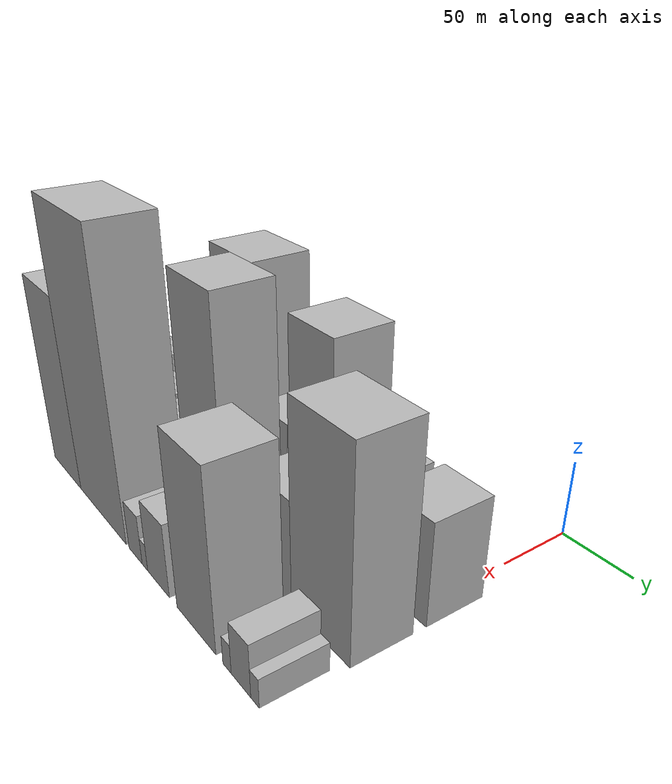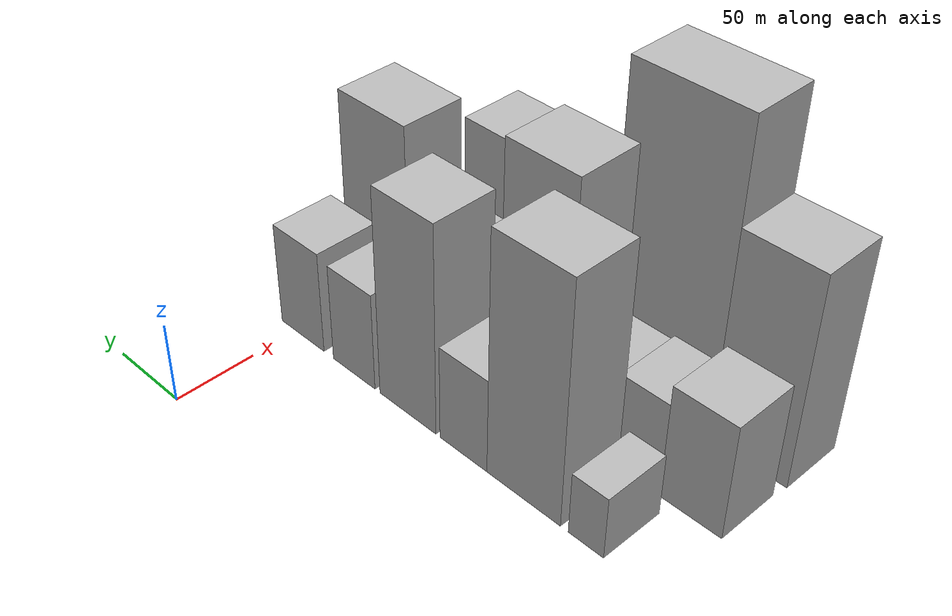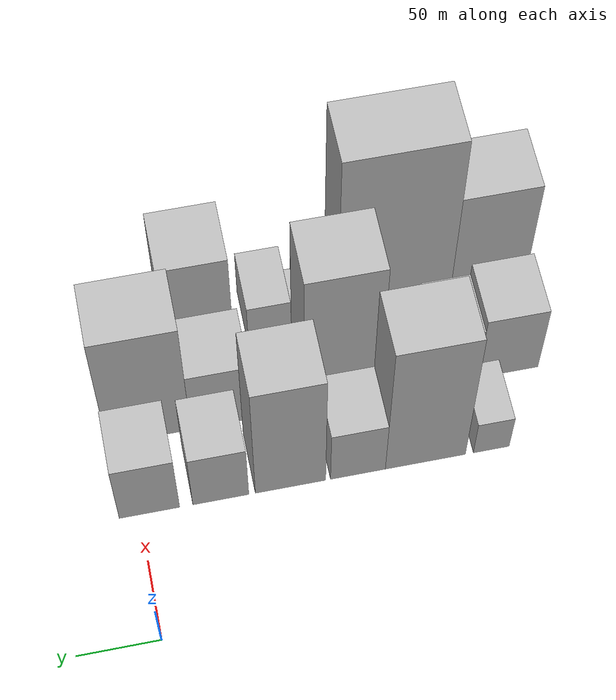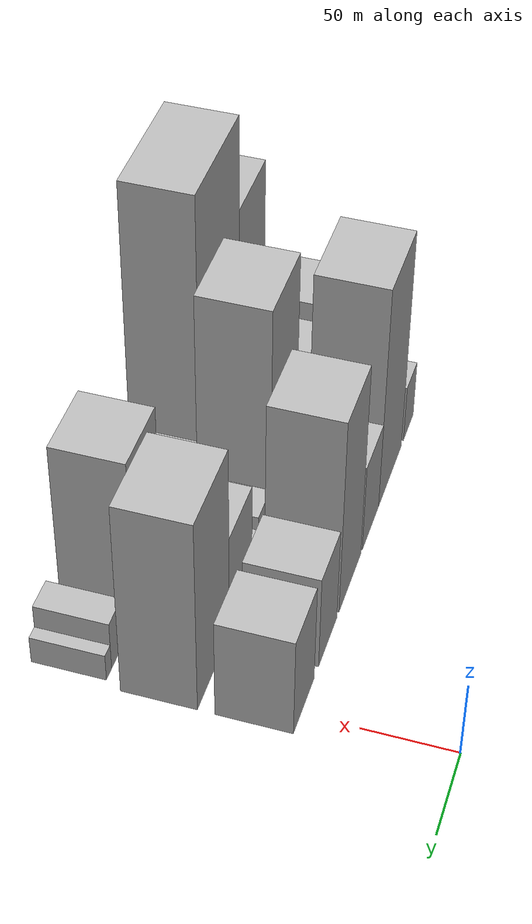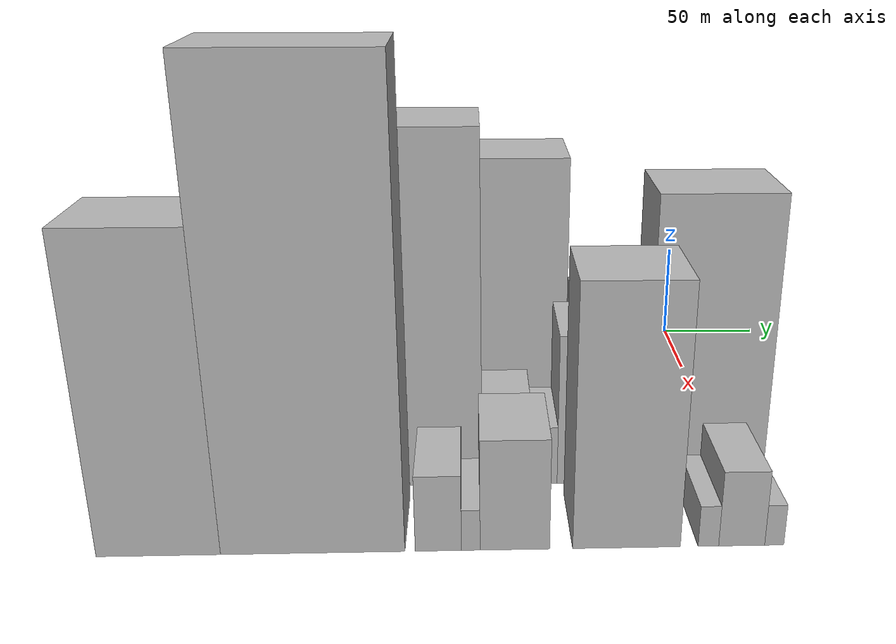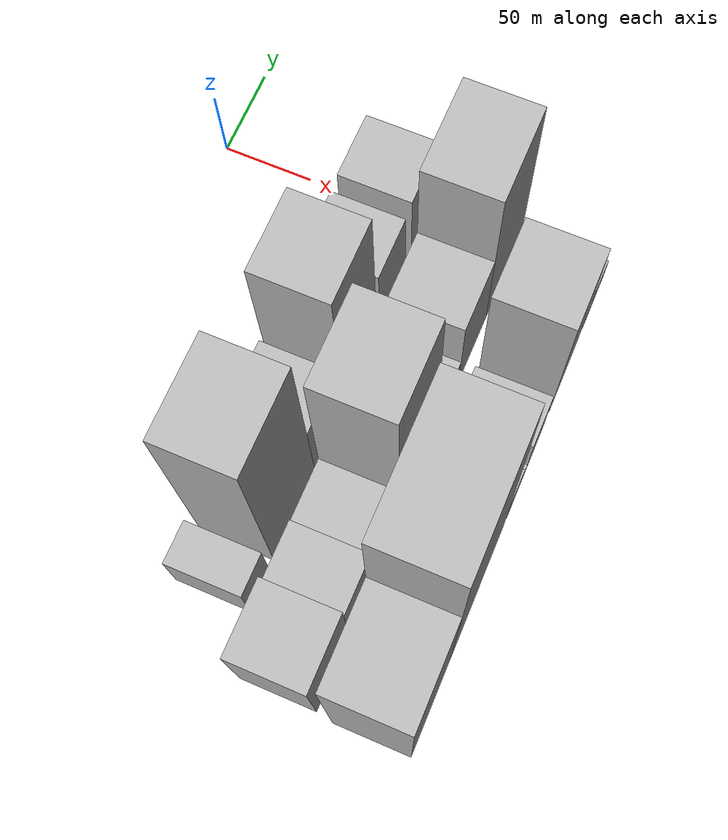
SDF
<sdf version="1.6">
 <world name="default">
  <model name="building_10">
   <static>1</static>
   <pose>100.0000 -215.5935 0 0.000000 0.000000 0.000000</pose>
   <link name="link">
    <pose>0 0 19.50 0 0 0</pose>
    <collision name="collision"><geometry><box><size>40.0000 22.2987 39.0000</size></box></geometry></collision>
    <visual name="visual">
     <cast_shadows>0</cast_shadows>
     <geometry><box><size>40.0000 22.2987 39.0000</size></box></geometry>
     <material>
      <script>
       <uri>model://HANNAS_wall/materials/scripts</uri>
       <uri>model://HANNAS_wall/materials/textures</uri>
       <name>vrc/HANNAS_wall</name>
      </script>
     </material>
    </visual>
   </link>
  </model>
  <model name="building_11">
   <static>1</static>
   <pose>100.0000 -174.6152 0 0.000000 0.000000 0.000000</pose>
   <link name="link">
    <pose>0 0 75.00 0 0 0</pose>
    <collision name="collision"><geometry><box><size>40.0000 49.6580 150.0000</size></box></geometry></collision>
    <visual name="visual">
     <cast_shadows>0</cast_shadows>
     <geometry><box><size>40.0000 49.6580 150.0000</size></box></geometry>
     <material>
      <script>
       <uri>model://HANNAS_wall/materials/scripts</uri>
       <uri>model://HANNAS_wall/materials/textures</uri>
       <name>vrc/HANNAS_wall</name>
      </script>
     </material>
    </visual>
   </link>
  </model>
  <model name="building_12">
   <static>1</static>
   <pose>100.0000 -132.8719 0 0.000000 0.000000 0.000000</pose>
   <link name="link">
    <pose>0 0 30.00 0 0 0</pose>
    <collision name="collision"><geometry><box><size>40.0000 33.8285 60.0000</size></box></geometry></collision>
    <visual name="visual">
     <cast_shadows>0</cast_shadows>
     <geometry><box><size>40.0000 33.8285 60.0000</size></box></geometry>
     <material>
      <script>
       <uri>model://HANNAS_wall/materials/scripts</uri>
       <uri>model://HANNAS_wall/materials/textures</uri>
       <name>vrc/HANNAS_wall</name>
      </script>
     </material>
    </visual>
   </link>
  </model>
  <model name="building_13">
   <static>1</static>
   <pose>100.0000 -91.4328 0 0.000000 0.000000 0.000000</pose>
   <link name="link">
    <pose>0 0 66.00 0 0 0</pose>
    <collision name="collision"><geometry><box><size>40.0000 43.0498 132.0000</size></box></geometry></collision>
    <visual name="visual">
     <cast_shadows>0</cast_shadows>
     <geometry><box><size>40.0000 43.0498 132.0000</size></box></geometry>
     <material>
      <script>
       <uri>model://HANNAS_wall/materials/scripts</uri>
       <uri>model://HANNAS_wall/materials/textures</uri>
       <name>vrc/HANNAS_wall</name>
      </script>
     </material>
    </visual>
   </link>
  </model>
  <model name="building_14">
   <static>1</static>
   <pose>100.0000 -48.8827 0 0.000000 0.000000 0.000000</pose>
   <link name="link">
    <pose>0 0 31.50 0 0 0</pose>
    <collision name="collision"><geometry><box><size>40.0000 34.0503 63.0000</size></box></geometry></collision>
    <visual name="visual">
     <cast_shadows>0</cast_shadows>
     <geometry><box><size>40.0000 34.0503 63.0000</size></box></geometry>
     <material>
      <script>
       <uri>model://HANNAS_wall/materials/scripts</uri>
       <uri>model://HANNAS_wall/materials/textures</uri>
       <name>vrc/HANNAS_wall</name>
      </script>
     </material>
    </visual>
   </link>
  </model>
  <model name="building_15">
   <static>1</static>
   <pose>100.0000 -5.6149 0 0.000000 0.000000 0.000000</pose>
   <link name="link">
    <pose>0 0 33.00 0 0 0</pose>
    <collision name="collision"><geometry><box><size>40.0000 36.4854 66.0000</size></box></geometry></collision>
    <visual name="visual">
     <cast_shadows>0</cast_shadows>
     <geometry><box><size>40.0000 36.4854 66.0000</size></box></geometry>
     <material>
      <script>
       <uri>model://HANNAS_wall/materials/scripts</uri>
       <uri>model://HANNAS_wall/materials/textures</uri>
       <name>vrc/HANNAS_wall</name>
      </script>
     </material>
    </visual>
   </link>
  </model>
  <model name="building_37">
   <static>1</static>
   <pose>149.0000 -238.4165 0 0.000000 0.000000 0.000000</pose>
   <link name="link">
    <pose>0 0 36.00 0 0 0</pose>
    <collision name="collision"><geometry><box><size>40.0000 38.0072 72.0000</size></box></geometry></collision>
    <visual name="visual">
     <cast_shadows>0</cast_shadows>
     <geometry><box><size>40.0000 38.0072 72.0000</size></box></geometry>
     <material>
      <script>
       <uri>model://HANNAS_wall/materials/scripts</uri>
       <uri>model://HANNAS_wall/materials/textures</uri>
       <name>vrc/HANNAS_wall</name>
      </script>
     </material>
    </visual>
   </link>
  </model>
  <model name="building_38">
   <static>1</static>
   <pose>149.0000 -204.2550 0 0.000000 0.000000 0.000000</pose>
   <link name="link">
    <pose>0 0 30.00 0 0 0</pose>
    <collision name="collision"><geometry><box><size>40.0000 30.3158 60.0000</size></box></geometry></collision>
    <visual name="visual">
     <cast_shadows>0</cast_shadows>
     <geometry><box><size>40.0000 30.3158 60.0000</size></box></geometry>
     <material>
      <script>
       <uri>model://HANNAS_wall/materials/scripts</uri>
       <uri>model://HANNAS_wall/materials/textures</uri>
       <name>vrc/HANNAS_wall</name>
      </script>
     </material>
    </visual>
   </link>
  </model>
  <model name="building_39">
   <static>1</static>
   <pose>149.0000 -173.2007 0 0.000000 0.000000 0.000000</pose>
   <link name="link">
    <pose>0 0 28.50 0 0 0</pose>
    <collision name="collision"><geometry><box><size>40.0000 31.7929 57.0000</size></box></geometry></collision>
    <visual name="visual">
     <cast_shadows>0</cast_shadows>
     <geometry><box><size>40.0000 31.7929 57.0000</size></box></geometry>
     <material>
      <script>
       <uri>model://HANNAS_wall/materials/scripts</uri>
       <uri>model://HANNAS_wall/materials/textures</uri>
       <name>vrc/HANNAS_wall</name>
      </script>
     </material>
    </visual>
   </link>
  </model>
  <model name="building_40">
   <static>1</static>
   <pose>149.0000 -133.5145 0 0.000000 0.000000 0.000000</pose>
   <link name="link">
    <pose>0 0 78.00 0 0 0</pose>
    <collision name="collision"><geometry><box><size>40.0000 47.5794 156.0000</size></box></geometry></collision>
    <visual name="visual">
     <cast_shadows>0</cast_shadows>
     <geometry><box><size>40.0000 47.5794 156.0000</size></box></geometry>
     <material>
      <script>
       <uri>model://HANNAS_wall/materials/scripts</uri>
       <uri>model://HANNAS_wall/materials/textures</uri>
       <name>vrc/HANNAS_wall</name>
      </script>
     </material>
    </visual>
   </link>
  </model>
  <model name="building_41">
   <static>1</static>
   <pose>149.0000 -99.1163 0 0.000000 0.000000 0.000000</pose>
   <link name="link">
    <pose>0 0 18.00 0 0 0</pose>
    <collision name="collision"><geometry><box><size>40.0000 21.2170 36.0000</size></box></geometry></collision>
    <visual name="visual">
     <cast_shadows>0</cast_shadows>
     <geometry><box><size>40.0000 21.2170 36.0000</size></box></geometry>
     <material>
      <script>
       <uri>model://HANNAS_wall/materials/scripts</uri>
       <uri>model://HANNAS_wall/materials/textures</uri>
       <name>vrc/HANNAS_wall</name>
      </script>
     </material>
    </visual>
   </link>
  </model>
  <model name="building_42">
   <static>1</static>
   <pose>149.0000 -82.8478 0 0.000000 0.000000 0.000000</pose>
   <link name="link">
    <pose>0 0 13.50 0 0 0</pose>
    <collision name="collision"><geometry><box><size>40.0000 11.3200 27.0000</size></box></geometry></collision>
    <visual name="visual">
     <cast_shadows>0</cast_shadows>
     <geometry><box><size>40.0000 11.3200 27.0000</size></box></geometry>
     <material>
      <script>
       <uri>model://HANNAS_wall/materials/scripts</uri>
       <uri>model://HANNAS_wall/materials/textures</uri>
       <name>vrc/HANNAS_wall</name>
      </script>
     </material>
    </visual>
   </link>
  </model>
  <model name="building_43">
   <static>1</static>
   <pose>149.0000 -58.1162 0 0.000000 0.000000 0.000000</pose>
   <link name="link">
    <pose>0 0 34.50 0 0 0</pose>
    <collision name="collision"><geometry><box><size>40.0000 38.1432 69.0000</size></box></geometry></collision>
    <visual name="visual">
     <cast_shadows>0</cast_shadows>
     <geometry><box><size>40.0000 38.1432 69.0000</size></box></geometry>
     <material>
      <script>
       <uri>model://HANNAS_wall/materials/scripts</uri>
       <uri>model://HANNAS_wall/materials/textures</uri>
       <name>vrc/HANNAS_wall</name>
      </script>
     </material>
    </visual>
   </link>
  </model>
  <model name="building_44">
   <static>1</static>
   <pose>149.0000 -13.2859 0 0.000000 0.000000 0.000000</pose>
   <link name="link">
    <pose>0 0 64.50 0 0 0</pose>
    <collision name="collision"><geometry><box><size>40.0000 51.5175 129.0000</size></box></geometry></collision>
    <visual name="visual">
     <cast_shadows>0</cast_shadows>
     <geometry><box><size>40.0000 51.5175 129.0000</size></box></geometry>
     <material>
      <script>
       <uri>model://HANNAS_wall/materials/scripts</uri>
       <uri>model://HANNAS_wall/materials/textures</uri>
       <name>vrc/HANNAS_wall</name>
      </script>
     </material>
    </visual>
   </link>
  </model>
  <model name="building_66">
   <static>1</static>
   <pose>198.0000 -235.3586 0 0.000000 0.000000 0.000000</pose>
   <link name="link">
    <pose>0 0 66.00 0 0 0</pose>
    <collision name="collision"><geometry><box><size>40.0000 47.6505 132.0000</size></box></geometry></collision>
    <visual name="visual">
     <cast_shadows>0</cast_shadows>
     <geometry><box><size>40.0000 47.6505 132.0000</size></box></geometry>
     <material>
      <script>
       <uri>model://HANNAS_wall/materials/scripts</uri>
       <uri>model://HANNAS_wall/materials/textures</uri>
       <name>vrc/HANNAS_wall</name>
      </script>
     </material>
    </visual>
   </link>
  </model>
  <model name="building_67">
   <static>1</static>
   <pose>198.0000 -175.9464 0 0.000000 0.000000 0.000000</pose>
   <link name="link">
    <pose>0 0 96.00 0 0 0</pose>
    <collision name="collision"><geometry><box><size>40.0000 71.1739 192.0000</size></box></geometry></collision>
    <visual name="visual">
     <cast_shadows>0</cast_shadows>
     <geometry><box><size>40.0000 71.1739 192.0000</size></box></geometry>
     <material>
      <script>
       <uri>model://HANNAS_wall/materials/scripts</uri>
       <uri>model://HANNAS_wall/materials/textures</uri>
       <name>vrc/HANNAS_wall</name>
      </script>
     </material>
    </visual>
   </link>
  </model>
  <model name="building_68">
   <static>1</static>
   <pose>198.0000 -127.3639 0 0.000000 0.000000 0.000000</pose>
   <link name="link">
    <pose>0 0 16.50 0 0 0</pose>
    <collision name="collision"><geometry><box><size>40.0000 17.9911 33.0000</size></box></geometry></collision>
    <visual name="visual">
     <cast_shadows>0</cast_shadows>
     <geometry><box><size>40.0000 17.9911 33.0000</size></box></geometry>
     <material>
      <script>
       <uri>model://HANNAS_wall/materials/scripts</uri>
       <uri>model://HANNAS_wall/materials/textures</uri>
       <name>vrc/HANNAS_wall</name>
      </script>
     </material>
    </visual>
   </link>
  </model>
  <model name="building_69">
   <static>1</static>
   <pose>198.0000 -114.7444 0 0.000000 0.000000 0.000000</pose>
   <link name="link">
    <pose>0 0 9.00 0 0 0</pose>
    <collision name="collision"><geometry><box><size>40.0000 7.2479 18.0000</size></box></geometry></collision>
    <visual name="visual">
     <cast_shadows>0</cast_shadows>
     <geometry><box><size>40.0000 7.2479 18.0000</size></box></geometry>
     <material>
      <script>
       <uri>model://HANNAS_wall/materials/scripts</uri>
       <uri>model://HANNAS_wall/materials/textures</uri>
       <name>vrc/HANNAS_wall</name>
      </script>
     </material>
    </visual>
   </link>
  </model>
  <model name="building_70">
   <static>1</static>
   <pose>198.0000 -97.5670 0 0.000000 0.000000 0.000000</pose>
   <link name="link">
    <pose>0 0 24.00 0 0 0</pose>
    <collision name="collision"><geometry><box><size>40.0000 27.1068 48.0000</size></box></geometry></collision>
    <visual name="visual">
     <cast_shadows>0</cast_shadows>
     <geometry><box><size>40.0000 27.1068 48.0000</size></box></geometry>
     <material>
      <script>
       <uri>model://HANNAS_wall/materials/scripts</uri>
       <uri>model://HANNAS_wall/materials/textures</uri>
       <name>vrc/HANNAS_wall</name>
      </script>
     </material>
    </visual>
   </link>
  </model>
  <model name="building_71">
   <static>1</static>
   <pose>198.0000 -53.8993 0 0.000000 0.000000 0.000000</pose>
   <link name="link">
    <pose>0 0 55.50 0 0 0</pose>
    <collision name="collision"><geometry><box><size>40.0000 42.2286 111.0000</size></box></geometry></collision>
    <visual name="visual">
     <cast_shadows>0</cast_shadows>
     <geometry><box><size>40.0000 42.2286 111.0000</size></box></geometry>
     <material>
      <script>
       <uri>model://HANNAS_wall/materials/scripts</uri>
       <uri>model://HANNAS_wall/materials/textures</uri>
       <name>vrc/HANNAS_wall</name>
      </script>
     </material>
    </visual>
   </link>
  </model>
  <model name="building_72">
   <static>1</static>
   <pose>198.0000 -21.7380 0 0.000000 0.000000 0.000000</pose>
   <link name="link">
    <pose>0 0 9.00 0 0 0</pose>
    <collision name="collision"><geometry><box><size>40.0000 8.0939 18.0000</size></box></geometry></collision>
    <visual name="visual">
     <cast_shadows>0</cast_shadows>
     <geometry><box><size>40.0000 8.0939 18.0000</size></box></geometry>
     <material>
      <script>
       <uri>model://HANNAS_wall/materials/scripts</uri>
       <uri>model://HANNAS_wall/materials/textures</uri>
       <name>vrc/HANNAS_wall</name>
      </script>
     </material>
    </visual>
   </link>
  </model>
  <model name="building_73">
   <static>1</static>
   <pose>198.0000 -8.6068 0 0.000000 0.000000 0.000000</pose>
   <link name="link">
    <pose>0 0 16.50 0 0 0</pose>
    <collision name="collision"><geometry><box><size>40.0000 18.1685 33.0000</size></box></geometry></collision>
    <visual name="visual">
     <cast_shadows>0</cast_shadows>
     <geometry><box><size>40.0000 18.1685 33.0000</size></box></geometry>
     <material>
      <script>
       <uri>model://HANNAS_wall/materials/scripts</uri>
       <uri>model://HANNAS_wall/materials/textures</uri>
       <name>vrc/HANNAS_wall</name>
      </script>
     </material>
    </visual>
   </link>
  </model>
  <model name="building_74">
   <static>1</static>
   <pose>198.0000 4.2532 0 0.000000 0.000000 0.000000</pose>
   <link name="link">
    <pose>0 0 9.00 0 0 0</pose>
    <collision name="collision"><geometry><box><size>40.0000 7.5517 18.0000</size></box></geometry></collision>
    <visual name="visual">
     <cast_shadows>0</cast_shadows>
     <geometry><box><size>40.0000 7.5517 18.0000</size></box></geometry>
     <material>
      <script>
       <uri>model://HANNAS_wall/materials/scripts</uri>
       <uri>model://HANNAS_wall/materials/textures</uri>
       <name>vrc/HANNAS_wall</name>
      </script>
     </material>
    </visual>
   </link>
  </model>
 </world>
</sdf>
